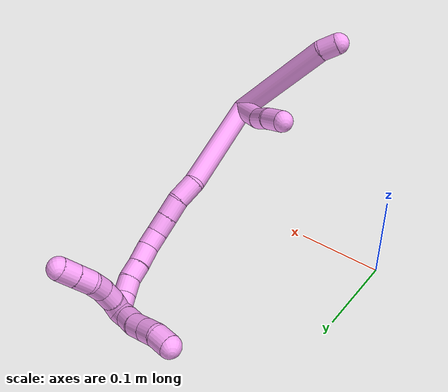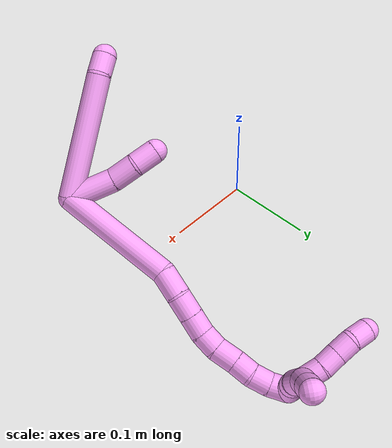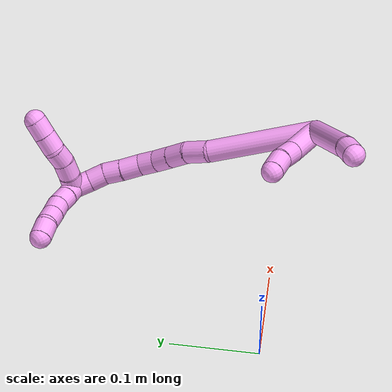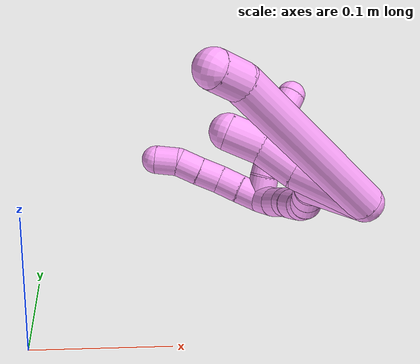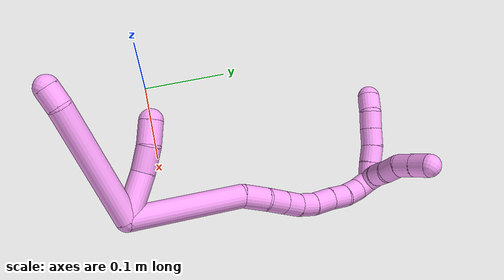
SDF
<sdf version="1.7">
 <world name="default">
  <model name="4">
   <static>0</static>
   <link name="4">
    <collision name="collision-cylinder-e_1_2_8">
     <pose>0.027569 -0.052299 0.025481 1.11743 0.442547 0.279436</pose>
     <geometry><cylinder><radius>0.0125</radius><length>0.128756</length></cylinder></geometry>
     <surface>
      <friction><ode><mu>1.16</mu><mu2>1.16</mu2><slip1>0</slip1><slip2>0</slip2></ode></friction>
      <contact><ode><kp>1e+06</kp><kd>1</kd><max_vel>0</max_vel><min_depth>0.001</min_depth></ode></contact>
     </surface>
    </collision>
    <visual name="visual-cylinder-e_1_2_8">
     <pose>0.027569 -0.052299 0.025481 1.11743 0.442547 0.279436</pose>
     <geometry><cylinder><radius>0.0125</radius><length>0.128756</length></cylinder></geometry>
     <material><ambient>1 0.65098 0.996078 1</ambient></material>
    </visual>
    <collision name="collision-cylinder-e_2_8_6">
     <pose>0.05694 -0.114145 0.055255 1.14817 0.170413 0.11037</pose>
     <geometry><cylinder><radius>0.0125</radius><length>0.021244</length></cylinder></geometry>
     <surface>
      <friction><ode><mu>1.16</mu><mu2>1.16</mu2><slip1>0</slip1><slip2>0</slip2></ode></friction>
      <contact><ode><kp>1e+06</kp><kd>1</kd><max_vel>0</max_vel><min_depth>0.001</min_depth></ode></contact>
     </surface>
    </collision>
    <visual name="visual-cylinder-e_2_8_6">
     <pose>0.05694 -0.114145 0.055255 1.14817 0.170413 0.11037</pose>
     <geometry><cylinder><radius>0.0125</radius><length>0.021244</length></cylinder></geometry>
     <material><ambient>1 0.65098 0.996078 1</ambient></material>
    </visual>
    <collision name="collision-cylinder-e_1_2_9">
     <pose>0.002558 -0.004856 0.023443 0.204231 0.106435 0.010917</pose>
     <geometry><cylinder><radius>0.0125</radius><length>0.048154</length></cylinder></geometry>
     <surface>
      <friction><ode><mu>1.16</mu><mu2>1.16</mu2><slip1>0</slip1><slip2>0</slip2></ode></friction>
      <contact><ode><kp>1e+06</kp><kd>1</kd><max_vel>0</max_vel><min_depth>0.001</min_depth></ode></contact>
     </surface>
    </collision>
    <visual name="visual-cylinder-e_1_2_9">
     <pose>0.002558 -0.004856 0.023443 0.204231 0.106435 0.010917</pose>
     <geometry><cylinder><radius>0.0125</radius><length>0.048154</length></cylinder></geometry>
     <material><ambient>1 0.65098 0.996078 1</ambient></material>
    </visual>
    <collision name="collision-cylinder-e_2_9_10">
     <pose>0.00934 -0.013832 0.059071 0.326159 0.317357 0.052649</pose>
     <geometry><cylinder><radius>0.0125</radius><length>0.027077</length></cylinder></geometry>
     <surface>
      <friction><ode><mu>1.16</mu><mu2>1.16</mu2><slip1>0</slip1><slip2>0</slip2></ode></friction>
      <contact><ode><kp>1e+06</kp><kd>1</kd><max_vel>0</max_vel><min_depth>0.001</min_depth></ode></contact>
     </surface>
    </collision>
    <visual name="visual-cylinder-e_2_9_10">
     <pose>0.00934 -0.013832 0.059071 0.326159 0.317357 0.052649</pose>
     <geometry><cylinder><radius>0.0125</radius><length>0.027077</length></cylinder></geometry>
     <material><ambient>1 0.65098 0.996078 1</ambient></material>
    </visual>
    <collision name="collision-cylinder-e_3_10_5">
     <pose>0.014796 -0.023187 0.082412 0.438589 0.099539 0.022203</pose>
     <geometry><cylinder><radius>0.0125</radius><length>0.024769</length></cylinder></geometry>
     <surface>
      <friction><ode><mu>1.16</mu><mu2>1.16</mu2><slip1>0</slip1><slip2>0</slip2></ode></friction>
      <contact><ode><kp>1e+06</kp><kd>1</kd><max_vel>0</max_vel><min_depth>0.001</min_depth></ode></contact>
     </surface>
    </collision>
    <visual name="visual-cylinder-e_3_10_5">
     <pose>0.014796 -0.023187 0.082412 0.438589 0.099539 0.022203</pose>
     <geometry><cylinder><radius>0.0125</radius><length>0.024769</length></cylinder></geometry>
     <material><ambient>1 0.65098 0.996078 1</ambient></material>
    </visual>
    <collision name="collision-cylinder-e_1_2_11">
     <pose>-0.00851 0.045646 0.040834 -0.840987 -0.138068 0.061818</pose>
     <geometry><cylinder><radius>0.0125</radius><length>0.123667</length></cylinder></geometry>
     <surface>
      <friction><ode><mu>1.16</mu><mu2>1.16</mu2><slip1>0</slip1><slip2>0</slip2></ode></friction>
      <contact><ode><kp>1e+06</kp><kd>1</kd><max_vel>0</max_vel><min_depth>0.001</min_depth></ode></contact>
     </surface>
    </collision>
    <visual name="visual-cylinder-e_1_2_11">
     <pose>-0.00851 0.045646 0.040834 -0.840987 -0.138068 0.061818</pose>
     <geometry><cylinder><radius>0.0125</radius><length>0.123667</length></cylinder></geometry>
     <material><ambient>1 0.65098 0.996078 1</ambient></material>
    </visual>
    <collision name="collision-cylinder-e_2_11_12">
     <pose>-0.019825 0.103994 0.087228 -1.15816 -0.199584 0.130747</pose>
     <geometry><cylinder><radius>0.0125</radius><length>0.028294</length></cylinder></geometry>
     <surface>
      <friction><ode><mu>1.16</mu><mu2>1.16</mu2><slip1>0</slip1><slip2>0</slip2></ode></friction>
      <contact><ode><kp>1e+06</kp><kd>1</kd><max_vel>0</max_vel><min_depth>0.001</min_depth></ode></contact>
     </surface>
    </collision>
    <visual name="visual-cylinder-e_2_11_12">
     <pose>-0.019825 0.103994 0.087228 -1.15816 -0.199584 0.130747</pose>
     <geometry><cylinder><radius>0.0125</radius><length>0.028294</length></cylinder></geometry>
     <material><ambient>1 0.65098 0.996078 1</ambient></material>
    </visual>
    <collision name="collision-cylinder-e_3_12_13">
     <pose>-0.027339 0.126335 0.097235 -1.13865 -0.41756 0.269552</pose>
     <geometry><cylinder><radius>0.0125</radius><length>0.023224</length></cylinder></geometry>
     <surface>
      <friction><ode><mu>1.16</mu><mu2>1.16</mu2><slip1>0</slip1><slip2>0</slip2></ode></friction>
      <contact><ode><kp>1e+06</kp><kd>1</kd><max_vel>0</max_vel><min_depth>0.001</min_depth></ode></contact>
     </surface>
    </collision>
    <visual name="visual-cylinder-e_3_12_13">
     <pose>-0.027339 0.126335 0.097235 -1.13865 -0.41756 0.269552</pose>
     <geometry><cylinder><radius>0.0125</radius><length>0.023224</length></cylinder></geometry>
     <material><ambient>1 0.65098 0.996078 1</ambient></material>
    </visual>
    <collision name="collision-cylinder-e_4_13_14">
     <pose>-0.036298 0.144823 0.105715 -1.14305 -0.41199 0.267171</pose>
     <geometry><cylinder><radius>0.0125</radius><length>0.021228</length></cylinder></geometry>
     <surface>
      <friction><ode><mu>1.16</mu><mu2>1.16</mu2><slip1>0</slip1><slip2>0</slip2></ode></friction>
      <contact><ode><kp>1e+06</kp><kd>1</kd><max_vel>0</max_vel><min_depth>0.001</min_depth></ode></contact>
     </surface>
    </collision>
    <visual name="visual-cylinder-e_4_13_14">
     <pose>-0.036298 0.144823 0.105715 -1.14305 -0.41199 0.267171</pose>
     <geometry><cylinder><radius>0.0125</radius><length>0.021228</length></cylinder></geometry>
     <material><ambient>1 0.65098 0.996078 1</ambient></material>
    </visual>
    <collision name="collision-cylinder-e_5_14_15">
     <pose>-0.043282 0.161667 0.115201 -0.97221 -0.275331 0.146149</pose>
     <geometry><cylinder><radius>0.0125</radius><length>0.020109</length></cylinder></geometry>
     <surface>
      <friction><ode><mu>1.16</mu><mu2>1.16</mu2><slip1>0</slip1><slip2>0</slip2></ode></friction>
      <contact><ode><kp>1e+06</kp><kd>1</kd><max_vel>0</max_vel><min_depth>0.001</min_depth></ode></contact>
     </surface>
    </collision>
    <visual name="visual-cylinder-e_5_14_15">
     <pose>-0.043282 0.161667 0.115201 -0.97221 -0.275331 0.146149</pose>
     <geometry><cylinder><radius>0.0125</radius><length>0.020109</length></cylinder></geometry>
     <material><ambient>1 0.65098 0.996078 1</ambient></material>
    </visual>
    <collision name="collision-cylinder-e_6_15_16">
     <pose>-0.048215 0.177517 0.128974 -0.756711 -0.18988 0.07567</pose>
     <geometry><cylinder><radius>0.0125</radius><length>0.023307</length></cylinder></geometry>
     <surface>
      <friction><ode><mu>1.16</mu><mu2>1.16</mu2><slip1>0</slip1><slip2>0</slip2></ode></friction>
      <contact><ode><kp>1e+06</kp><kd>1</kd><max_vel>0</max_vel><min_depth>0.001</min_depth></ode></contact>
     </surface>
    </collision>
    <visual name="visual-cylinder-e_6_15_16">
     <pose>-0.048215 0.177517 0.128974 -0.756711 -0.18988 0.07567</pose>
     <geometry><cylinder><radius>0.0125</radius><length>0.023307</length></cylinder></geometry>
     <material><ambient>1 0.65098 0.996078 1</ambient></material>
    </visual>
    <collision name="collision-cylinder-e_7_16_17">
     <pose>-0.052085 0.192763 0.143893 -0.841986 -0.167029 0.074929</pose>
     <geometry><cylinder><radius>0.0125</radius><length>0.020092</length></cylinder></geometry>
     <surface>
      <friction><ode><mu>1.16</mu><mu2>1.16</mu2><slip1>0</slip1><slip2>0</slip2></ode></friction>
      <contact><ode><kp>1e+06</kp><kd>1</kd><max_vel>0</max_vel><min_depth>0.001</min_depth></ode></contact>
     </surface>
    </collision>
    <visual name="visual-cylinder-e_7_16_17">
     <pose>-0.052085 0.192763 0.143893 -0.841986 -0.167029 0.074929</pose>
     <geometry><cylinder><radius>0.0125</radius><length>0.020092</length></cylinder></geometry>
     <material><ambient>1 0.65098 0.996078 1</ambient></material>
    </visual>
    <collision name="collision-cylinder-e_8_17_18">
     <pose>-0.056569 0.205675 0.158379 -0.61071 -0.284347 0.090178</pose>
     <geometry><cylinder><radius>0.0125</radius><length>0.020066</length></cylinder></geometry>
     <surface>
      <friction><ode><mu>1.16</mu><mu2>1.16</mu2><slip1>0</slip1><slip2>0</slip2></ode></friction>
      <contact><ode><kp>1e+06</kp><kd>1</kd><max_vel>0</max_vel><min_depth>0.001</min_depth></ode></contact>
     </surface>
    </collision>
    <visual name="visual-cylinder-e_8_17_18">
     <pose>-0.056569 0.205675 0.158379 -0.61071 -0.284347 0.090178</pose>
     <geometry><cylinder><radius>0.0125</radius><length>0.020066</length></cylinder></geometry>
     <material><ambient>1 0.65098 0.996078 1</ambient></material>
    </visual>
    <collision name="collision-cylinder-e_9_18_1">
     <pose>-0.060683 0.215636 0.175142 -0.463754 -0.130186 0.030781</pose>
     <geometry><cylinder><radius>0.0125</radius><length>0.020013</length></cylinder></geometry>
     <surface>
      <friction><ode><mu>1.16</mu><mu2>1.16</mu2><slip1>0</slip1><slip2>0</slip2></ode></friction>
      <contact><ode><kp>1e+06</kp><kd>1</kd><max_vel>0</max_vel><min_depth>0.001</min_depth></ode></contact>
     </surface>
    </collision>
    <visual name="visual-cylinder-e_9_18_1">
     <pose>-0.060683 0.215636 0.175142 -0.463754 -0.130186 0.030781</pose>
     <geometry><cylinder><radius>0.0125</radius><length>0.020013</length></cylinder></geometry>
     <material><ambient>1 0.65098 0.996078 1</ambient></material>
    </visual>
    <collision name="collision-cylinder-e_1_1_19">
     <pose>-0.060734 0.216003 0.193064 0.422786 0.125152 0.026891</pose>
     <geometry><cylinder><radius>0.0125</radius><length>0.02</length></cylinder></geometry>
     <surface>
      <friction><ode><mu>1.16</mu><mu2>1.16</mu2><slip1>0</slip1><slip2>0</slip2></ode></friction>
      <contact><ode><kp>1e+06</kp><kd>1</kd><max_vel>0</max_vel><min_depth>0.001</min_depth></ode></contact>
     </surface>
    </collision>
    <visual name="visual-cylinder-e_1_1_19">
     <pose>-0.060734 0.216003 0.193064 0.422786 0.125152 0.026891</pose>
     <geometry><cylinder><radius>0.0125</radius><length>0.02</length></cylinder></geometry>
     <material><ambient>1 0.65098 0.996078 1</ambient></material>
    </visual>
    <collision name="collision-cylinder-e_2_19_20">
     <pose>-0.058168 0.208448 0.211393 0.35914 0.132148 0.024022</pose>
     <geometry><cylinder><radius>0.0125</radius><length>0.02</length></cylinder></geometry>
     <surface>
      <friction><ode><mu>1.16</mu><mu2>1.16</mu2><slip1>0</slip1><slip2>0</slip2></ode></friction>
      <contact><ode><kp>1e+06</kp><kd>1</kd><max_vel>0</max_vel><min_depth>0.001</min_depth></ode></contact>
     </surface>
    </collision>
    <visual name="visual-cylinder-e_2_19_20">
     <pose>-0.058168 0.208448 0.211393 0.35914 0.132148 0.024022</pose>
     <geometry><cylinder><radius>0.0125</radius><length>0.02</length></cylinder></geometry>
     <material><ambient>1 0.65098 0.996078 1</ambient></material>
    </visual>
    <collision name="collision-cylinder-e_3_20_21">
     <pose>-0.055805 0.199641 0.229074 0.564776 0.104656 0.030391</pose>
     <geometry><cylinder><radius>0.0125</radius><length>0.02</length></cylinder></geometry>
     <surface>
      <friction><ode><mu>1.16</mu><mu2>1.16</mu2><slip1>0</slip1><slip2>0</slip2></ode></friction>
      <contact><ode><kp>1e+06</kp><kd>1</kd><max_vel>0</max_vel><min_depth>0.001</min_depth></ode></contact>
     </surface>
    </collision>
    <visual name="visual-cylinder-e_3_20_21">
     <pose>-0.055805 0.199641 0.229074 0.564776 0.104656 0.030391</pose>
     <geometry><cylinder><radius>0.0125</radius><length>0.02</length></cylinder></geometry>
     <material><ambient>1 0.65098 0.996078 1</ambient></material>
    </visual>
    <collision name="collision-cylinder-e_4_21_22">
     <pose>-0.053358 0.189254 0.245983 0.536876 0.140728 0.03877</pose>
     <geometry><cylinder><radius>0.0125</radius><length>0.02</length></cylinder></geometry>
     <surface>
      <friction><ode><mu>1.16</mu><mu2>1.16</mu2><slip1>0</slip1><slip2>0</slip2></ode></friction>
      <contact><ode><kp>1e+06</kp><kd>1</kd><max_vel>0</max_vel><min_depth>0.001</min_depth></ode></contact>
     </surface>
    </collision>
    <visual name="visual-cylinder-e_4_21_22">
     <pose>-0.053358 0.189254 0.245983 0.536876 0.140728 0.03877</pose>
     <geometry><cylinder><radius>0.0125</radius><length>0.02</length></cylinder></geometry>
     <material><ambient>1 0.65098 0.996078 1</ambient></material>
    </visual>
    <collision name="collision-cylinder-e_5_22_4">
     <pose>-0.053917 0.179763 0.263241 0.4684 -0.19747 -0.047257</pose>
     <geometry><cylinder><radius>0.0125</radius><length>0.02</length></cylinder></geometry>
     <surface>
      <friction><ode><mu>1.16</mu><mu2>1.16</mu2><slip1>0</slip1><slip2>0</slip2></ode></friction>
      <contact><ode><kp>1e+06</kp><kd>1</kd><max_vel>0</max_vel><min_depth>0.001</min_depth></ode></contact>
     </surface>
    </collision>
    <visual name="visual-cylinder-e_5_22_4">
     <pose>-0.053917 0.179763 0.263241 0.4684 -0.19747 -0.047257</pose>
     <geometry><cylinder><radius>0.0125</radius><length>0.02</length></cylinder></geometry>
     <material><ambient>1 0.65098 0.996078 1</ambient></material>
    </visual>
    <collision name="collision-cylinder-e_1_1_23">
     <pose>-0.05206 0.220011 0.185262 0.050787 1.44573 0.044804</pose>
     <geometry><cylinder><radius>0.0125</radius><length>0.02</length></cylinder></geometry>
     <surface>
      <friction><ode><mu>1.16</mu><mu2>1.16</mu2><slip1>0</slip1><slip2>0</slip2></ode></friction>
      <contact><ode><kp>1e+06</kp><kd>1</kd><max_vel>0</max_vel><min_depth>0.001</min_depth></ode></contact>
     </surface>
    </collision>
    <visual name="visual-cylinder-e_1_1_23">
     <pose>-0.05206 0.220011 0.185262 0.050787 1.44573 0.044804</pose>
     <geometry><cylinder><radius>0.0125</radius><length>0.02</length></cylinder></geometry>
     <material><ambient>1 0.65098 0.996078 1</ambient></material>
    </visual>
    <collision name="collision-cylinder-e_2_23_24">
     <pose>-0.032276 0.221292 0.187476 -0.947049 1.40433 -0.818086</pose>
     <geometry><cylinder><radius>0.0125</radius><length>0.02</length></cylinder></geometry>
     <surface>
      <friction><ode><mu>1.16</mu><mu2>1.16</mu2><slip1>0</slip1><slip2>0</slip2></ode></friction>
      <contact><ode><kp>1e+06</kp><kd>1</kd><max_vel>0</max_vel><min_depth>0.001</min_depth></ode></contact>
     </surface>
    </collision>
    <visual name="visual-cylinder-e_2_23_24">
     <pose>-0.032276 0.221292 0.187476 -0.947049 1.40433 -0.818086</pose>
     <geometry><cylinder><radius>0.0125</radius><length>0.02</length></cylinder></geometry>
     <material><ambient>1 0.65098 0.996078 1</ambient></material>
    </visual>
    <collision name="collision-cylinder-e_3_24_25">
     <pose>-0.0131 0.22467 0.191462 -0.592479 1.19831 -0.410983</pose>
     <geometry><cylinder><radius>0.0125</radius><length>0.02</length></cylinder></geometry>
     <surface>
      <friction><ode><mu>1.16</mu><mu2>1.16</mu2><slip1>0</slip1><slip2>0</slip2></ode></friction>
      <contact><ode><kp>1e+06</kp><kd>1</kd><max_vel>0</max_vel><min_depth>0.001</min_depth></ode></contact>
     </surface>
    </collision>
    <visual name="visual-cylinder-e_3_24_25">
     <pose>-0.0131 0.22467 0.191462 -0.592479 1.19831 -0.410983</pose>
     <geometry><cylinder><radius>0.0125</radius><length>0.02</length></cylinder></geometry>
     <material><ambient>1 0.65098 0.996078 1</ambient></material>
    </visual>
    <collision name="collision-cylinder-e_4_25_26">
     <pose>0.004977 0.231429 0.195413 -1.3762 1.06806 -0.905044</pose>
     <geometry><cylinder><radius>0.0125</radius><length>0.02</length></cylinder></geometry>
     <surface>
      <friction><ode><mu>1.16</mu><mu2>1.16</mu2><slip1>0</slip1><slip2>0</slip2></ode></friction>
      <contact><ode><kp>1e+06</kp><kd>1</kd><max_vel>0</max_vel><min_depth>0.001</min_depth></ode></contact>
     </surface>
    </collision>
    <visual name="visual-cylinder-e_4_25_26">
     <pose>0.004977 0.231429 0.195413 -1.3762 1.06806 -0.905044</pose>
     <geometry><cylinder><radius>0.0125</radius><length>0.02</length></cylinder></geometry>
     <material><ambient>1 0.65098 0.996078 1</ambient></material>
    </visual>
    <collision name="collision-cylinder-e_5_26_3">
     <pose>0.022473 0.240971 0.197078 -1.41973 1.06214 -0.934815</pose>
     <geometry><cylinder><radius>0.0125</radius><length>0.02</length></cylinder></geometry>
     <surface>
      <friction><ode><mu>1.16</mu><mu2>1.16</mu2><slip1>0</slip1><slip2>0</slip2></ode></friction>
      <contact><ode><kp>1e+06</kp><kd>1</kd><max_vel>0</max_vel><min_depth>0.001</min_depth></ode></contact>
     </surface>
    </collision>
    <visual name="visual-cylinder-e_5_26_3">
     <pose>0.022473 0.240971 0.197078 -1.41973 1.06214 -0.934815</pose>
     <geometry><cylinder><radius>0.0125</radius><length>0.02</length></cylinder></geometry>
     <material><ambient>1 0.65098 0.996078 1</ambient></material>
    </visual>
    <collision name="collision-sphere-3">
     <pose>0.031207 0.245786 0.197811 0 -0 0</pose>
     <geometry><sphere><radius>0.0125</radius></sphere></geometry>
     <surface>
      <friction><ode><mu>1.16</mu><mu2>1.16</mu2><slip1>0</slip1><slip2>0</slip2></ode></friction>
      <contact><ode><kp>1e+06</kp><kd>1</kd><max_vel>0</max_vel><min_depth>0.001</min_depth></ode></contact>
     </surface>
    </collision>
    <visual name="visual-sphere-3">
     <pose>0.031207 0.245786 0.197811 0 -0 0</pose>
     <geometry><sphere><radius>0.0125</radius></sphere></geometry>
     <material><ambient>1 0.65098 0.996078 1</ambient></material>
    </visual>
    <collision name="collision-sphere-26">
     <pose>0.013739 0.236156 0.196345 0 -0 0</pose>
     <geometry><sphere><radius>0.0125</radius></sphere></geometry>
     <surface>
      <friction><ode><mu>1.16</mu><mu2>1.16</mu2><slip1>0</slip1><slip2>0</slip2></ode></friction>
      <contact><ode><kp>1e+06</kp><kd>1</kd><max_vel>0</max_vel><min_depth>0.001</min_depth></ode></contact>
     </surface>
    </collision>
    <visual name="visual-sphere-26">
     <pose>0.013739 0.236156 0.196345 0 -0 0</pose>
     <geometry><sphere><radius>0.0125</radius></sphere></geometry>
     <material><ambient>1 0.65098 0.996078 1</ambient></material>
    </visual>
    <collision name="collision-sphere-25">
     <pose>-0.003786 0.226702 0.194482 0 -0 0</pose>
     <geometry><sphere><radius>0.0125</radius></sphere></geometry>
     <surface>
      <friction><ode><mu>1.16</mu><mu2>1.16</mu2><slip1>0</slip1><slip2>0</slip2></ode></friction>
      <contact><ode><kp>1e+06</kp><kd>1</kd><max_vel>0</max_vel><min_depth>0.001</min_depth></ode></contact>
     </surface>
    </collision>
    <visual name="visual-sphere-25">
     <pose>-0.003786 0.226702 0.194482 0 -0 0</pose>
     <geometry><sphere><radius>0.0125</radius></sphere></geometry>
     <material><ambient>1 0.65098 0.996078 1</ambient></material>
    </visual>
    <collision name="collision-sphere-24">
     <pose>-0.022415 0.222637 0.188443 0 -0 0</pose>
     <geometry><sphere><radius>0.0125</radius></sphere></geometry>
     <surface>
      <friction><ode><mu>1.16</mu><mu2>1.16</mu2><slip1>0</slip1><slip2>0</slip2></ode></friction>
      <contact><ode><kp>1e+06</kp><kd>1</kd><max_vel>0</max_vel><min_depth>0.001</min_depth></ode></contact>
     </surface>
    </collision>
    <visual name="visual-sphere-24">
     <pose>-0.022415 0.222637 0.188443 0 -0 0</pose>
     <geometry><sphere><radius>0.0125</radius></sphere></geometry>
     <material><ambient>1 0.65098 0.996078 1</ambient></material>
    </visual>
    <collision name="collision-sphere-23">
     <pose>-0.042138 0.219947 0.186508 0 -0 0</pose>
     <geometry><sphere><radius>0.0125</radius></sphere></geometry>
     <surface>
      <friction><ode><mu>1.16</mu><mu2>1.16</mu2><slip1>0</slip1><slip2>0</slip2></ode></friction>
      <contact><ode><kp>1e+06</kp><kd>1</kd><max_vel>0</max_vel><min_depth>0.001</min_depth></ode></contact>
     </surface>
    </collision>
    <visual name="visual-sphere-23">
     <pose>-0.042138 0.219947 0.186508 0 -0 0</pose>
     <geometry><sphere><radius>0.0125</radius></sphere></geometry>
     <material><ambient>1 0.65098 0.996078 1</ambient></material>
    </visual>
    <collision name="collision-sphere-4">
     <pose>-0.055879 0.175336 0.27199 0 -0 0</pose>
     <geometry><sphere><radius>0.0125</radius></sphere></geometry>
     <surface>
      <friction><ode><mu>1.16</mu><mu2>1.16</mu2><slip1>0</slip1><slip2>0</slip2></ode></friction>
      <contact><ode><kp>1e+06</kp><kd>1</kd><max_vel>0</max_vel><min_depth>0.001</min_depth></ode></contact>
     </surface>
    </collision>
    <visual name="visual-sphere-4">
     <pose>-0.055879 0.175336 0.27199 0 -0 0</pose>
     <geometry><sphere><radius>0.0125</radius></sphere></geometry>
     <material><ambient>1 0.65098 0.996078 1</ambient></material>
    </visual>
    <collision name="collision-sphere-22">
     <pose>-0.051956 0.18419 0.254491 0 -0 0</pose>
     <geometry><sphere><radius>0.0125</radius></sphere></geometry>
     <surface>
      <friction><ode><mu>1.16</mu><mu2>1.16</mu2><slip1>0</slip1><slip2>0</slip2></ode></friction>
      <contact><ode><kp>1e+06</kp><kd>1</kd><max_vel>0</max_vel><min_depth>0.001</min_depth></ode></contact>
     </surface>
    </collision>
    <visual name="visual-sphere-22">
     <pose>-0.051956 0.18419 0.254491 0 -0 0</pose>
     <geometry><sphere><radius>0.0125</radius></sphere></geometry>
     <material><ambient>1 0.65098 0.996078 1</ambient></material>
    </visual>
    <collision name="collision-sphere-21">
     <pose>-0.054761 0.194318 0.237475 0 -0 0</pose>
     <geometry><sphere><radius>0.0125</radius></sphere></geometry>
     <surface>
      <friction><ode><mu>1.16</mu><mu2>1.16</mu2><slip1>0</slip1><slip2>0</slip2></ode></friction>
      <contact><ode><kp>1e+06</kp><kd>1</kd><max_vel>0</max_vel><min_depth>0.001</min_depth></ode></contact>
     </surface>
    </collision>
    <visual name="visual-sphere-21">
     <pose>-0.054761 0.194318 0.237475 0 -0 0</pose>
     <geometry><sphere><radius>0.0125</radius></sphere></geometry>
     <material><ambient>1 0.65098 0.996078 1</ambient></material>
    </visual>
    <collision name="collision-sphere-20">
     <pose>-0.05685 0.204964 0.220673 0 -0 0</pose>
     <geometry><sphere><radius>0.0125</radius></sphere></geometry>
     <surface>
      <friction><ode><mu>1.16</mu><mu2>1.16</mu2><slip1>0</slip1><slip2>0</slip2></ode></friction>
      <contact><ode><kp>1e+06</kp><kd>1</kd><max_vel>0</max_vel><min_depth>0.001</min_depth></ode></contact>
     </surface>
    </collision>
    <visual name="visual-sphere-20">
     <pose>-0.05685 0.204964 0.220673 0 -0 0</pose>
     <geometry><sphere><radius>0.0125</radius></sphere></geometry>
     <material><ambient>1 0.65098 0.996078 1</ambient></material>
    </visual>
    <collision name="collision-sphere-5">
     <pose>0.016027 -0.02842 0.093569 0 -0 0</pose>
     <geometry><sphere><radius>0.0125</radius></sphere></geometry>
     <surface>
      <friction><ode><mu>1.16</mu><mu2>1.16</mu2><slip1>0</slip1><slip2>0</slip2></ode></friction>
      <contact><ode><kp>1e+06</kp><kd>1</kd><max_vel>0</max_vel><min_depth>0.001</min_depth></ode></contact>
     </surface>
    </collision>
    <visual name="visual-sphere-5">
     <pose>0.016027 -0.02842 0.093569 0 -0 0</pose>
     <geometry><sphere><radius>0.0125</radius></sphere></geometry>
     <material><ambient>1 0.65098 0.996078 1</ambient></material>
    </visual>
    <collision name="collision-sphere-10">
     <pose>0.013565 -0.017953 0.071255 0 -0 0</pose>
     <geometry><sphere><radius>0.0125</radius></sphere></geometry>
     <surface>
      <friction><ode><mu>1.16</mu><mu2>1.16</mu2><slip1>0</slip1><slip2>0</slip2></ode></friction>
      <contact><ode><kp>1e+06</kp><kd>1</kd><max_vel>0</max_vel><min_depth>0.001</min_depth></ode></contact>
     </surface>
    </collision>
    <visual name="visual-sphere-10">
     <pose>0.013565 -0.017953 0.071255 0 -0 0</pose>
     <geometry><sphere><radius>0.0125</radius></sphere></geometry>
     <material><ambient>1 0.65098 0.996078 1</ambient></material>
    </visual>
    <collision name="collision-sphere-6">
     <pose>0.058742 -0.123692 0.059549 0 -0 0</pose>
     <geometry><sphere><radius>0.0125</radius></sphere></geometry>
     <surface>
      <friction><ode><mu>1.16</mu><mu2>1.16</mu2><slip1>0</slip1><slip2>0</slip2></ode></friction>
      <contact><ode><kp>1e+06</kp><kd>1</kd><max_vel>0</max_vel><min_depth>0.001</min_depth></ode></contact>
     </surface>
    </collision>
    <visual name="visual-sphere-6">
     <pose>0.058742 -0.123692 0.059549 0 -0 0</pose>
     <geometry><sphere><radius>0.0125</radius></sphere></geometry>
     <material><ambient>1 0.65098 0.996078 1</ambient></material>
    </visual>
    <collision name="collision-sphere-9">
     <pose>0.005116 -0.009711 0.046887 0 -0 0</pose>
     <geometry><sphere><radius>0.0125</radius></sphere></geometry>
     <surface>
      <friction><ode><mu>1.16</mu><mu2>1.16</mu2><slip1>0</slip1><slip2>0</slip2></ode></friction>
      <contact><ode><kp>1e+06</kp><kd>1</kd><max_vel>0</max_vel><min_depth>0.001</min_depth></ode></contact>
     </surface>
    </collision>
    <visual name="visual-sphere-9">
     <pose>0.005116 -0.009711 0.046887 0 -0 0</pose>
     <geometry><sphere><radius>0.0125</radius></sphere></geometry>
     <material><ambient>1 0.65098 0.996078 1</ambient></material>
    </visual>
    <collision name="collision-sphere-2">
     <geometry><sphere><radius>0.0125</radius></sphere></geometry>
     <surface>
      <friction><ode><mu>1.16</mu><mu2>1.16</mu2><slip1>0</slip1><slip2>0</slip2></ode></friction>
      <contact><ode><kp>1e+06</kp><kd>1</kd><max_vel>0</max_vel><min_depth>0.001</min_depth></ode></contact>
     </surface>
    </collision>
    <visual name="visual-sphere-2">
     <geometry><sphere><radius>0.0125</radius></sphere></geometry>
     <material><ambient>1 0.65098 0.996078 1</ambient></material>
    </visual>
    <collision name="collision-sphere-19">
     <pose>-0.059485 0.211932 0.202113 0 -0 0</pose>
     <geometry><sphere><radius>0.0125</radius></sphere></geometry>
     <surface>
      <friction><ode><mu>1.16</mu><mu2>1.16</mu2><slip1>0</slip1><slip2>0</slip2></ode></friction>
      <contact><ode><kp>1e+06</kp><kd>1</kd><max_vel>0</max_vel><min_depth>0.001</min_depth></ode></contact>
     </surface>
    </collision>
    <visual name="visual-sphere-19">
     <pose>-0.059485 0.211932 0.202113 0 -0 0</pose>
     <geometry><sphere><radius>0.0125</radius></sphere></geometry>
     <material><ambient>1 0.65098 0.996078 1</ambient></material>
    </visual>
    <collision name="collision-sphere-8">
     <pose>0.055139 -0.104598 0.050962 0 -0 0</pose>
     <geometry><sphere><radius>0.0125</radius></sphere></geometry>
     <surface>
      <friction><ode><mu>1.16</mu><mu2>1.16</mu2><slip1>0</slip1><slip2>0</slip2></ode></friction>
      <contact><ode><kp>1e+06</kp><kd>1</kd><max_vel>0</max_vel><min_depth>0.001</min_depth></ode></contact>
     </surface>
    </collision>
    <visual name="visual-sphere-8">
     <pose>0.055139 -0.104598 0.050962 0 -0 0</pose>
     <geometry><sphere><radius>0.0125</radius></sphere></geometry>
     <material><ambient>1 0.65098 0.996078 1</ambient></material>
    </visual>
    <collision name="collision-sphere-11">
     <pose>-0.01702 0.091292 0.081668 0 -0 0</pose>
     <geometry><sphere><radius>0.0125</radius></sphere></geometry>
     <surface>
      <friction><ode><mu>1.16</mu><mu2>1.16</mu2><slip1>0</slip1><slip2>0</slip2></ode></friction>
      <contact><ode><kp>1e+06</kp><kd>1</kd><max_vel>0</max_vel><min_depth>0.001</min_depth></ode></contact>
     </surface>
    </collision>
    <visual name="visual-sphere-11">
     <pose>-0.01702 0.091292 0.081668 0 -0 0</pose>
     <geometry><sphere><radius>0.0125</radius></sphere></geometry>
     <material><ambient>1 0.65098 0.996078 1</ambient></material>
    </visual>
    <collision name="collision-sphere-12">
     <pose>-0.02263 0.116697 0.092789 0 -0 0</pose>
     <geometry><sphere><radius>0.0125</radius></sphere></geometry>
     <surface>
      <friction><ode><mu>1.16</mu><mu2>1.16</mu2><slip1>0</slip1><slip2>0</slip2></ode></friction>
      <contact><ode><kp>1e+06</kp><kd>1</kd><max_vel>0</max_vel><min_depth>0.001</min_depth></ode></contact>
     </surface>
    </collision>
    <visual name="visual-sphere-12">
     <pose>-0.02263 0.116697 0.092789 0 -0 0</pose>
     <geometry><sphere><radius>0.0125</radius></sphere></geometry>
     <material><ambient>1 0.65098 0.996078 1</ambient></material>
    </visual>
    <collision name="collision-sphere-13">
     <pose>-0.032048 0.135974 0.10168 0 -0 0</pose>
     <geometry><sphere><radius>0.0125</radius></sphere></geometry>
     <surface>
      <friction><ode><mu>1.16</mu><mu2>1.16</mu2><slip1>0</slip1><slip2>0</slip2></ode></friction>
      <contact><ode><kp>1e+06</kp><kd>1</kd><max_vel>0</max_vel><min_depth>0.001</min_depth></ode></contact>
     </surface>
    </collision>
    <visual name="visual-sphere-13">
     <pose>-0.032048 0.135974 0.10168 0 -0 0</pose>
     <geometry><sphere><radius>0.0125</radius></sphere></geometry>
     <material><ambient>1 0.65098 0.996078 1</ambient></material>
    </visual>
    <collision name="collision-sphere-14">
     <pose>-0.040548 0.153673 0.109749 0 -0 0</pose>
     <geometry><sphere><radius>0.0125</radius></sphere></geometry>
     <surface>
      <friction><ode><mu>1.16</mu><mu2>1.16</mu2><slip1>0</slip1><slip2>0</slip2></ode></friction>
      <contact><ode><kp>1e+06</kp><kd>1</kd><max_vel>0</max_vel><min_depth>0.001</min_depth></ode></contact>
     </surface>
    </collision>
    <visual name="visual-sphere-14">
     <pose>-0.040548 0.153673 0.109749 0 -0 0</pose>
     <geometry><sphere><radius>0.0125</radius></sphere></geometry>
     <material><ambient>1 0.65098 0.996078 1</ambient></material>
    </visual>
    <collision name="collision-sphere-15">
     <pose>-0.046015 0.16966 0.120653 0 -0 0</pose>
     <geometry><sphere><radius>0.0125</radius></sphere></geometry>
     <surface>
      <friction><ode><mu>1.16</mu><mu2>1.16</mu2><slip1>0</slip1><slip2>0</slip2></ode></friction>
      <contact><ode><kp>1e+06</kp><kd>1</kd><max_vel>0</max_vel><min_depth>0.001</min_depth></ode></contact>
     </surface>
    </collision>
    <visual name="visual-sphere-15">
     <pose>-0.046015 0.16966 0.120653 0 -0 0</pose>
     <geometry><sphere><radius>0.0125</radius></sphere></geometry>
     <material><ambient>1 0.65098 0.996078 1</ambient></material>
    </visual>
    <collision name="collision-sphere-16">
     <pose>-0.050414 0.185374 0.137295 0 -0 0</pose>
     <geometry><sphere><radius>0.0125</radius></sphere></geometry>
     <surface>
      <friction><ode><mu>1.16</mu><mu2>1.16</mu2><slip1>0</slip1><slip2>0</slip2></ode></friction>
      <contact><ode><kp>1e+06</kp><kd>1</kd><max_vel>0</max_vel><min_depth>0.001</min_depth></ode></contact>
     </surface>
    </collision>
    <visual name="visual-sphere-16">
     <pose>-0.050414 0.185374 0.137295 0 -0 0</pose>
     <geometry><sphere><radius>0.0125</radius></sphere></geometry>
     <material><ambient>1 0.65098 0.996078 1</ambient></material>
    </visual>
    <collision name="collision-sphere-17">
     <pose>-0.053755 0.200153 0.15049 0 -0 0</pose>
     <geometry><sphere><radius>0.0125</radius></sphere></geometry>
     <surface>
      <friction><ode><mu>1.16</mu><mu2>1.16</mu2><slip1>0</slip1><slip2>0</slip2></ode></friction>
      <contact><ode><kp>1e+06</kp><kd>1</kd><max_vel>0</max_vel><min_depth>0.001</min_depth></ode></contact>
     </surface>
    </collision>
    <visual name="visual-sphere-17">
     <pose>-0.053755 0.200153 0.15049 0 -0 0</pose>
     <geometry><sphere><radius>0.0125</radius></sphere></geometry>
     <material><ambient>1 0.65098 0.996078 1</ambient></material>
    </visual>
    <collision name="collision-sphere-18">
     <pose>-0.059384 0.211198 0.166269 0 -0 0</pose>
     <geometry><sphere><radius>0.0125</radius></sphere></geometry>
     <surface>
      <friction><ode><mu>1.16</mu><mu2>1.16</mu2><slip1>0</slip1><slip2>0</slip2></ode></friction>
      <contact><ode><kp>1e+06</kp><kd>1</kd><max_vel>0</max_vel><min_depth>0.001</min_depth></ode></contact>
     </surface>
    </collision>
    <visual name="visual-sphere-18">
     <pose>-0.059384 0.211198 0.166269 0 -0 0</pose>
     <geometry><sphere><radius>0.0125</radius></sphere></geometry>
     <material><ambient>1 0.65098 0.996078 1</ambient></material>
    </visual>
    <collision name="collision-sphere-1">
     <pose>-0.061982 0.220074 0.184016 0 -0 0</pose>
     <geometry><sphere><radius>0.0125</radius></sphere></geometry>
     <surface>
      <friction><ode><mu>1.16</mu><mu2>1.16</mu2><slip1>0</slip1><slip2>0</slip2></ode></friction>
      <contact><ode><kp>1e+06</kp><kd>1</kd><max_vel>0</max_vel><min_depth>0.001</min_depth></ode></contact>
     </surface>
    </collision>
    <visual name="visual-sphere-1">
     <pose>-0.061982 0.220074 0.184016 0 -0 0</pose>
     <geometry><sphere><radius>0.0125</radius></sphere></geometry>
     <material><ambient>1 0.65098 0.996078 1</ambient></material>
    </visual>
    <inertial>
     <pose>-0.013262 0.088784 0.104174 0 -0 0</pose>
     <mass>0.75</mass>
     <inertia><ixx>0.000425</ixx><ixy>0</ixy><ixz>0</ixz><iyy>0.000304</iyy><iyz>0</iyz><izz>-3e-06</izz></inertia>
    </inertial>
   </link>
   <pose>0.220731 -0.035036 0.12088 -1.24281 -1.22069 0.580684</pose>
  </model>
 </world>
</sdf>
